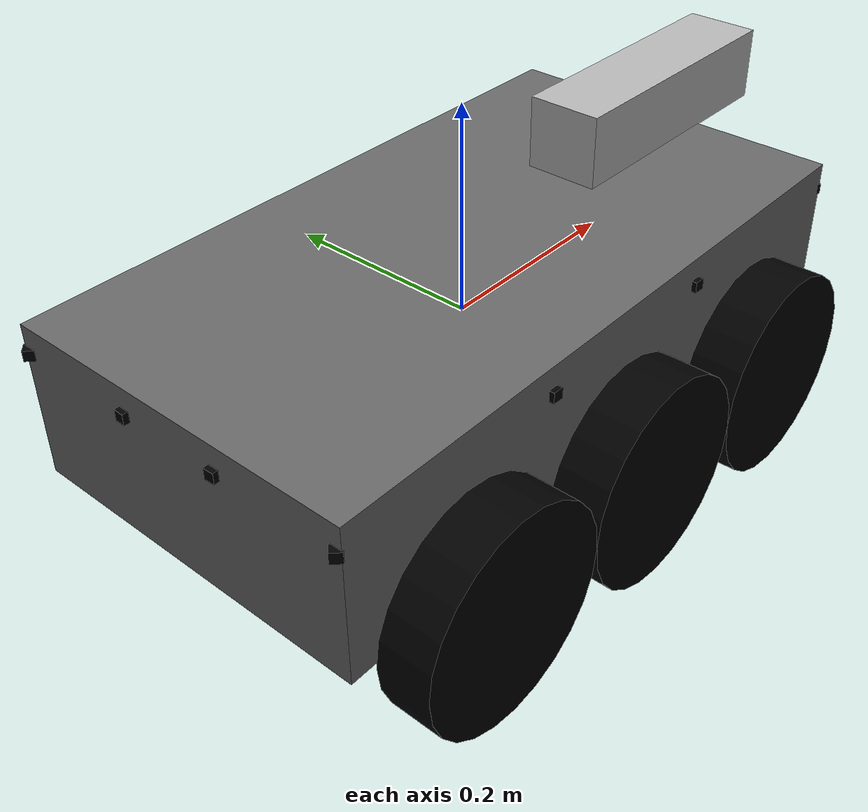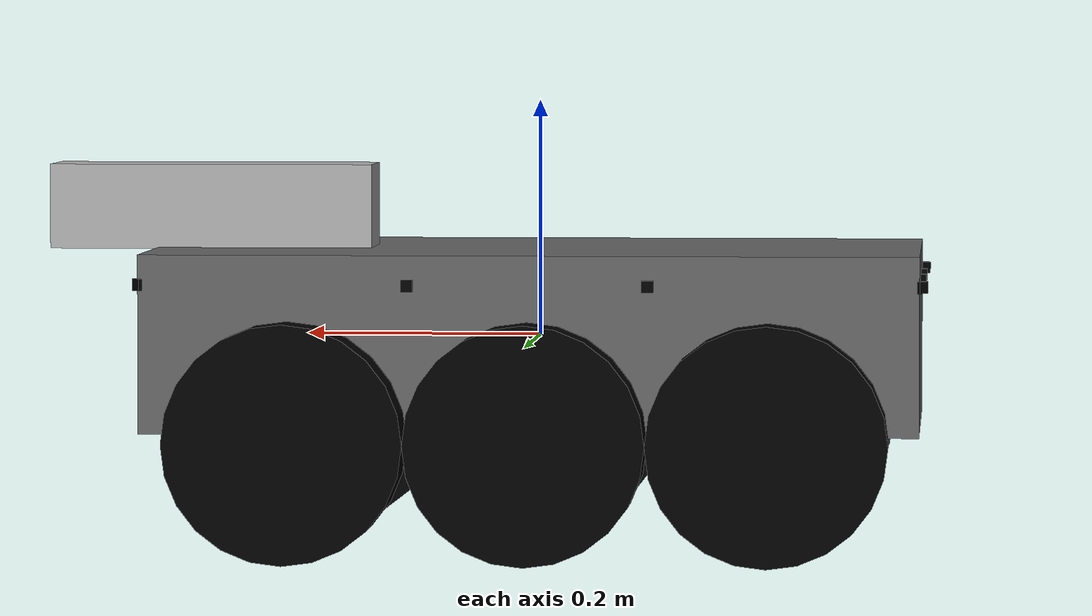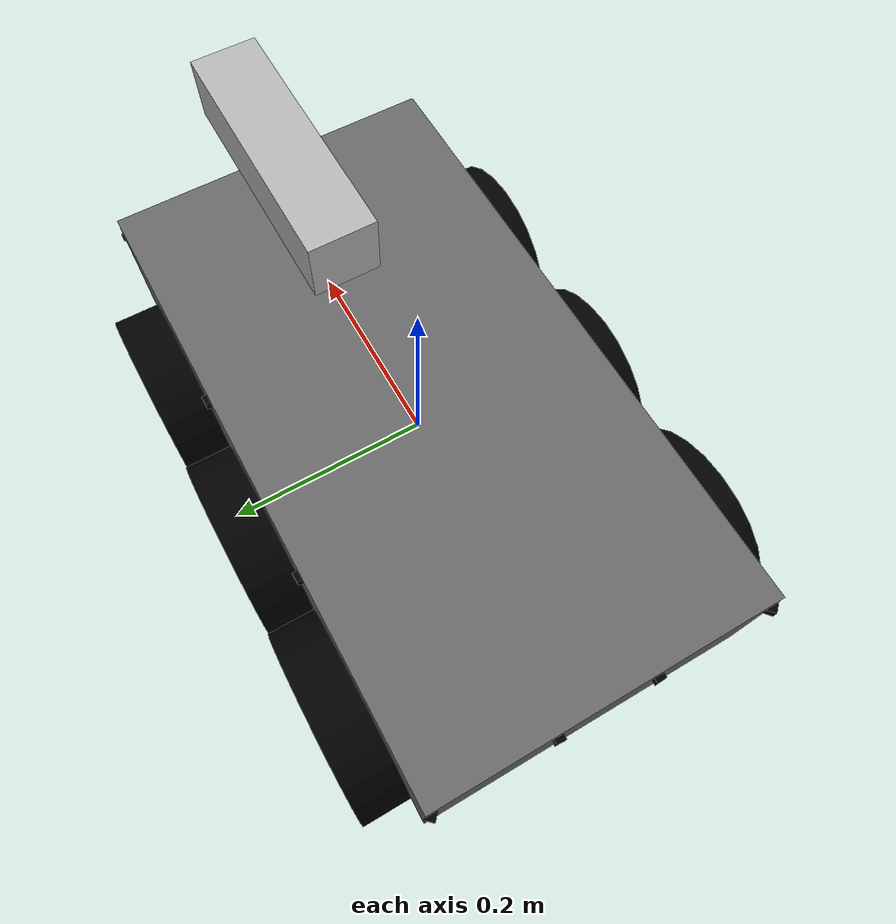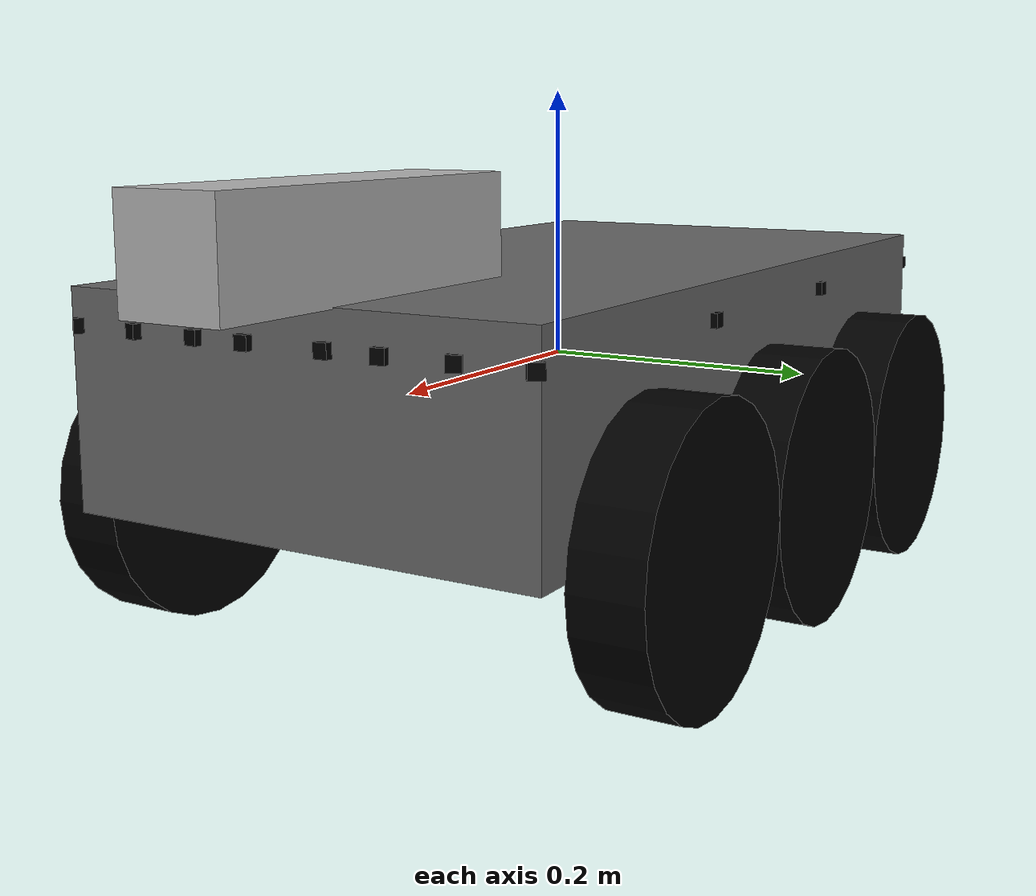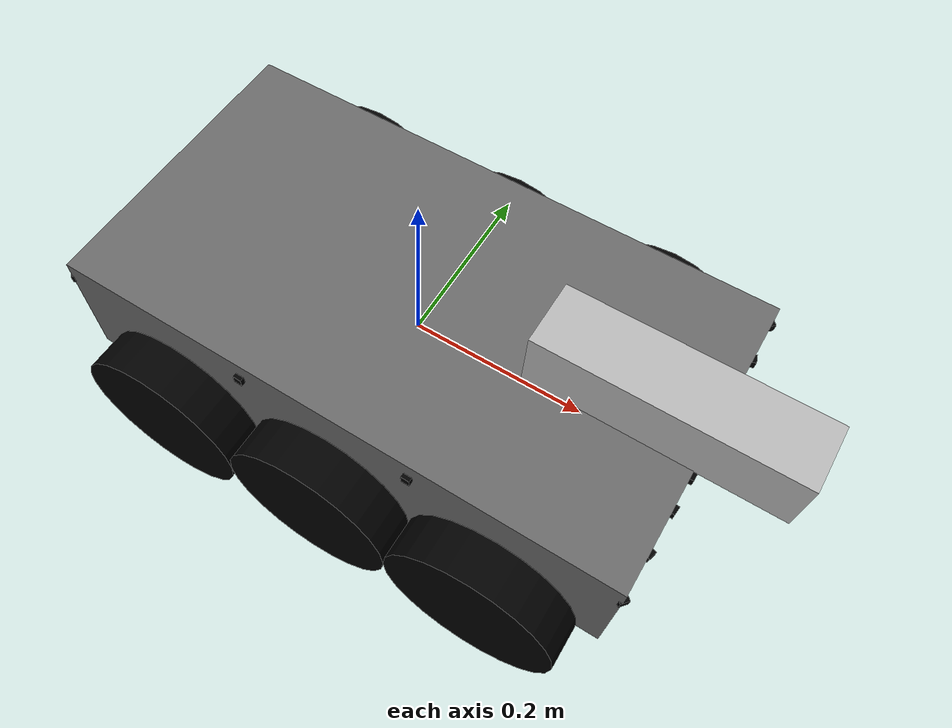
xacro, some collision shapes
<?xml version='1.0'?>

<robot name="koala" xmlns:xacro="http://www.ros.org/wiki/xacro">

  <!-- http://gazebosim.org/tutorials?tut=ros_gzplugins -->

  <xacro:property name="cameraSize" value="0.05"/>
  <xacro:property name="cameraMass" value="0.1"/>

  <xacro:include filename="$(find koala_description)/urdf/koala.gazebo" />
  <xacro:include filename="$(find koala_description)/urdf/materials.xacro" />
  <xacro:include filename="$(find koala_description)/urdf/macros.xacro" />

  <link name='body'>
    <pose>0 0 0.1 0 0 0</pose>

    <inertial>
      <mass value="10.0"/>
      <origin xyz="0.0 0 0.1" rpy=" 0 0 0"/>
      <inertia
          ixx="0.5" ixy="0" ixz="0"
          iyy="1.0" iyz="0"
          izz="0.1"
      />
    </inertial>

    <collision name='collision'>
      <geometry>
        <box size=".65 .35 .15"/>
      </geometry>
    </collision>

    <visual name='body_visual'>
      <origin xyz="0 0 0" rpy=" 0 0 0"/>
      <geometry>
        <box size=".65 .35 .15"/>
      </geometry>
      <material name="grey"/>
    </visual>

  </link>

<!--3x2 wheels skid steer robot-->>
  <link name="left_wheel_middle">
    <!--origin xyz="0.1 0.13 0.1" rpy="0 1.5707 1.5707"/-->
    <collision name="collision">
      <origin xyz="0 0 0" rpy="0 1.5707 1.5707"/>
      <geometry>
        <cylinder radius="0.1" length="0.05"/>
      </geometry>
    </collision>
    <visual name="left_wheel_middle_visual">
      <origin xyz="0 0 0" rpy="0 1.5707 1.5707"/>
      <geometry>
        <cylinder radius="0.1" length="0.05"/>
      </geometry>
      <material name="black"/>
    </visual>
    <inertial>
      <origin xyz="0 0 0" rpy="0 1.5707 1.5707"/>
      <mass value="5"/>
      <cylinder_inertia m="5" r="0.1" h="0.05"/>
      <inertia
        ixx="1.0" ixy="0.0" ixz="0.0"
        iyy="1.0" iyz="0.0"
        izz="1.0"/>
    </inertial>
  </link>

  <link name="right_wheel_middle">
    <!--origin xyz="0.1 -0.13 0.1" rpy="0 1.5707 1.5707"/-->
    <collision name="collision">
      <origin xyz="0 0 0" rpy="0 1.5707 1.5707"/>
      <geometry>
        <cylinder radius="0.1" length="0.05"/>
      </geometry>
    </collision>
    <visual name="right_wheel_middle_visual">
      <origin xyz="0 0 0" rpy="0 1.5707 1.5707"/>
      <geometry>
        <cylinder radius="0.1" length="0.05"/>
      </geometry>
      <material name="black"/>
    </visual>
    <inertial>
      <origin xyz="0 0 0" rpy="0 1.5707 1.5707"/>
      <mass value="5"/>
      <cylinder_inertia m="5" r="0.1" h="0.05"/>
      <inertia
        ixx="1.0" ixy="0.0" ixz="0.0"
        iyy="1.0" iyz="0.0"
        izz="1.0"/>
    </inertial>
  </link>

  <joint type="continuous" name="middle_left_wheel">
    <origin xyz="0 0.2 -0.08" rpy="0 0 0"/>
    <child link="left_wheel_middle"/>
    <parent link="body"/>
    <axis xyz="0 1 0" rpy="0 0 0"/>
    <limit effort="100" velocity="100"/>
    <joint_properties damping="0.0" friction="0.0"/>
  </joint>

  <joint type="continuous" name="middle_right_wheel">
    <origin xyz="0 -0.2 -0.08" rpy="0 0 0"/>
    <child link="right_wheel_middle"/>
    <parent link="body"/>
    <axis xyz="0 1 0" rpy="0 0 0"/>
    <limit effort="100" velocity="100"/>
    <joint_properties damping="0.0" friction="0.0"/>
  </joint>

 <link name="right_wheel_front">
    <!--origin xyz="0.1 -0.13 0.1" rpy="0 1.5707 1.5707"/-->
    <collision name="collision">
      <origin xyz="0 0 0" rpy="0 1.5707 1.5707"/>
      <geometry>
        <cylinder radius="0.1" length="0.05"/>
      </geometry>
    </collision>
    <visual name="right_wheel_front_visual">
      <origin xyz="0 0 0" rpy="0 1.5707 1.5707"/>
      <geometry>
        <cylinder radius="0.1" length="0.05"/>
      </geometry>
      <material name="black"/>
    </visual>
    <inertial>
      <origin xyz="0 0 0" rpy="0 1.5707 1.5707"/>
      <mass value="5"/>
      <cylinder_inertia m="5" r="0.1" h="0.05"/>
      <inertia
        ixx="1.0" ixy="0.0" ixz="0.0"
        iyy="1.0" iyz="0.0"
        izz="1.0"/>
    </inertial>
  </link>
   <link name="left_wheel_front">
    <!--origin xyz="0.1 -0.13 0.1" rpy="0 1.5707 1.5707"/-->
    <collision name="collision">
      <origin xyz="0 0 0" rpy="0 1.5707 1.5707"/>
      <geometry>
        <cylinder radius="0.1" length="0.05"/>
      </geometry>
    </collision>
    <visual name="left_wheel_front_visual">
      <origin xyz="0 0 0" rpy="0 1.5707 1.5707"/>
      <geometry>
        <cylinder radius="0.1" length="0.05"/>
      </geometry>
      <material name="black"/>
    </visual>
    <inertial>
      <origin xyz="0 0 0" rpy="0 1.5707 1.5707"/>
      <mass value="5"/>
      <cylinder_inertia m="5" r="0.1" h="0.05"/>
      <inertia
        ixx="1.0" ixy="0.0" ixz="0.0"
        iyy="1.0" iyz="0.0"
        izz="1.0"/>
    </inertial>
  </link>

  <joint type="continuous" name="front_left_wheel">
    <origin xyz="0.2 0.2 -0.08" rpy="0 0 0"/>
    <child link="left_wheel_front"/>
    <parent link="body"/>
    <axis xyz="0 1 0" rpy="0 0 0"/>
    <limit effort="100" velocity="100"/>
    <joint_properties damping="0.0" friction="0.0"/>
  </joint>

  <joint type="continuous" name="front_right_wheel">
    <origin xyz="0.2 -0.2 -0.08" rpy="0 0 0"/>
    <child link="right_wheel_front"/>
    <parent link="body"/>
    <axis xyz="0 1 0" rpy="0 0 0"/>
    <limit effort="100" velocity="100"/>
    <joint_properties damping="0.0" friction="0.0"/>
  </joint>

 <link name="left_wheel_rear">
    <!--origin xyz="0.1 -0.13 0.1" rpy="0 1.5707 1.5707"/-->
    <collision name="collision">
      <origin xyz="0 0 0" rpy="0 1.5707 1.5707"/>
      <geometry>
        <cylinder radius="0.1" length="0.05"/>
      </geometry>
    </collision>
    <visual name="left_wheel_rear_visual">
      <origin xyz="0 0 0" rpy="0 1.5707 1.5707"/>
      <geometry>
        <cylinder radius="0.1" length="0.05"/>
      </geometry>
      <material name="black"/>
    </visual>
    <inertial>
      <origin xyz="0 0 0" rpy="0 1.5707 1.5707"/>
      <mass value="5"/>
      <cylinder_inertia m="5" r="0.1" h="0.05"/>
      <inertia
        ixx="1.0" ixy="0.0" ixz="0.0"
        iyy="1.0" iyz="0.0"
        izz="1.0"/>
    </inertial>
  </link>
   <link name="right_wheel_rear">
    <!--origin xyz="0.1 -0.13 0.1" rpy="0 1.5707 1.5707"/-->
    <collision name="collision">
      <origin xyz="0 0 0" rpy="0 1.5707 1.5707"/>
      <geometry>
        <cylinder radius="0.1" length="0.05"/>
      </geometry>
    </collision>
    <visual name="right_wheel_rear_visual">
      <origin xyz="0 0 0" rpy="0 1.5707 1.5707"/>
      <geometry>
        <cylinder radius="0.1" length="0.05"/>
      </geometry>
      <material name="black"/>
    </visual>
    <inertial>
      <origin xyz="0 0 0" rpy="0 1.5707 1.5707"/>
      <mass value="5"/>
      <cylinder_inertia m="5" r="0.1" h="0.05"/>
      <inertia
        ixx="1.0" ixy="0.0" ixz="0.0"
        iyy="1.0" iyz="0.0"
        izz="1.0"/>
    </inertial>
  </link>

  <joint type="continuous" name="rear_left_wheel">
    <origin xyz="-0.2 0.2 -0.08" rpy="0 0 0"/>
    <child link="left_wheel_rear"/>
    <parent link="body"/>
    <axis xyz="0 1 0" rpy="0 0 0"/>
    <limit effort="100" velocity="100"/>
    <joint_properties damping="0.0" friction="0.0"/>
  </joint>

  <joint type="continuous" name="rear_right_wheel">
    <origin xyz="-0.2 -0.2 -0.08" rpy="0 0 0"/>
    <child link="right_wheel_rear"/>
    <parent link="body"/>
    <axis xyz="0 1 0" rpy="0 0 0"/>
    <limit effort="100" velocity="100"/>
    <joint_properties damping="0.0" friction="0.0"/>
  </joint>

<!-- Camera -->
  <link name="kinect">
    <collision name="collision">
      <origin xyz="0 0 0" rpy="0 0 1.57"/>
      <geometry>
        <box size="0.073000 0.276000 0.072000"/>
      </geometry>
    </collision>
    <visual name="visual">
      <origin xyz="0 0 0" rpy="0 0 1.57"/>
      <geometry>
        <mesh filename="package://koala_description/meshes/kinect.dae"/>
      </geometry>
    </visual>
    <inertial>
      <mass value="1e-5" />
      <origin xyz="0 0 0" rpy="0 0 0"/>
      <inertia ixx="1e-6" ixy="0" ixz="0" iyy="1e-6" iyz="0" izz="1e-6" />
    </inertial>
  </link>

  <joint name="kinect_joint" type="fixed">
    <axis xyz="0 1 0" />
    <origin xyz="0.28 0.0 0.11" rpy="0 0 0"/>
    <parent link="body"/>
    <child link="kinect"/>
  </joint>

<!-- generate an optical frame
      http://www.ros.org/reps/rep-0103.html#suffix-frames
      so that ros and opencv can operate on the camera frame correctly
      -->
  <joint name="kinect_optical_joint" type="fixed">
    <!-- these values have to be these values otherwise the gazebo camera
        image won't be aligned properly with the frame it is supposedly
        originating from -->
    <origin xyz="0 0 0" rpy="-1.57 0 -1.57"/>
    <parent link="kinect"/>
    <child link="kinect_link_optical"/>
  </joint>

  <link name="kinect_link_optical">
  </link>

<!--IR sensors right front-->
  <joint name="ir_r0_joint" type="fixed">
    <axis xyz="0 1 0" />
    <origin rpy="0 0 0" xyz="0.325 -0.03 0.05" />
    <parent link="body"/>
    <child link="ir_r0"/>
  </joint>

  <link name="ir_r0">
    <collision>
      <origin xyz="0 0 0" rpy="0 0 0"/>
      <geometry>
        <box size="0.01 0.01 0.01"/>
      </geometry>
    </collision>

    <visual>
      <origin xyz="0 0 0" rpy="0 0 0"/>
      <geometry>
        <box size="0.01 0.01 0.01"/>
      </geometry>
      <material name="black"/>
    </visual>

    <inertial>
      <mass value="1e-5" />
      <origin xyz="0 0 0" rpy="0 0 0"/>
      <inertia ixx="1e-6" ixy="0" ixz="0" iyy="1e-6" iyz="0" izz="1e-6" />
    </inertial>
  </link>

  <joint name="ir_r1_joint" type="fixed">
    <axis xyz="0 1 0" />
    <origin rpy="0 0 -0.1" xyz="0.3245 -0.07 0.05" />
    <parent link="body"/>
    <child link="ir_r1"/>
  </joint>

  <link name="ir_r1">
    <collision>
      <origin xyz="0 0 0" rpy="0 0 0"/>
      <geometry>
        <box size="0.01 0.01 0.01"/>
      </geometry>
    </collision>

    <visual>
      <origin xyz="0 0 0" rpy="0 0 0"/>
      <geometry>
        <box size="0.01 0.01 0.01"/>
      </geometry>
      <material name="black"/>
    </visual>

    <inertial>
      <mass value="1e-5" />
      <origin xyz="0 0 0" rpy="0 0 0"/>
      <inertia ixx="1e-6" ixy="0" ixz="0" iyy="1e-6" iyz="0" izz="1e-6" />
    </inertial>
  </link>

  <joint name="ir_r2_joint" type="fixed">
    <axis xyz="0 1 0" />
    <origin rpy="0 0 -0.3" xyz="0.324 -0.12 0.05" />
    <parent link="body"/>
    <child link="ir_r2"/>
  </joint>

  <link name="ir_r2">
    <collision>
      <origin xyz="0 0 0" rpy="0 0 0"/>
      <geometry>
        <box size="0.01 0.01 0.01"/>
      </geometry>
    </collision>

    <visual>
      <origin xyz="0 0 0" rpy="0 0 0"/>
      <geometry>
        <box size="0.01 0.01 0.01"/>
      </geometry>
      <material name="black"/>
    </visual>

    <inertial>
      <mass value="1e-5" />
      <origin xyz="0 0 0" rpy="0 0 0"/>
      <inertia ixx="1e-6" ixy="0" ixz="0" iyy="1e-6" iyz="0" izz="1e-6" />
    </inertial>
  </link>

  <joint name="ir_r3_joint" type="fixed">
    <axis xyz="0 1 0" />
    <origin rpy="0 0 -0.7" xyz="0.323 -0.17 0.05" />
    <parent link="body"/>
    <child link="ir_r3"/>
  </joint>

  <link name="ir_r3">
    <collision>
      <origin xyz="0 0 0" rpy="0 0 0"/>
      <geometry>
        <box size="0.01 0.01 0.01"/>
      </geometry>
    </collision>

    <visual>
      <origin xyz="0 0 0" rpy="0 0 0"/>
      <geometry>
        <box size="0.01 0.01 0.01"/>
      </geometry>
      <material name="black"/>
    </visual>

    <inertial>
      <mass value="1e-5" />
      <origin xyz="0 0 0" rpy="0 0 0"/>
      <inertia ixx="1e-6" ixy="0" ixz="0" iyy="1e-6" iyz="0" izz="1e-6" />
    </inertial>
  </link>

<!--IR sensors right-->
  <joint name="ir_r4_joint" type="fixed">
    <axis xyz="0 1 0" />
    <origin rpy="0 0 -1.6" xyz="0.1 -0.175 0.05" />
    <parent link="body"/>
    <child link="ir_r4"/>
  </joint>

  <link name="ir_r4">
    <collision>
      <origin xyz="0 0 0" rpy="0 0 0"/>
      <geometry>
        <box size="0.01 0.01 0.01"/>
      </geometry>
    </collision>

    <visual>
      <origin xyz="0 0 0" rpy="0 0 0"/>
      <geometry>
        <box size="0.01 0.01 0.01"/>
      </geometry>
      <material name="black"/>
    </visual>

    <inertial>
      <mass value="1e-5" />
      <origin xyz="0 0 0" rpy="0 0 0"/>
      <inertia ixx="1e-6" ixy="0" ixz="0" iyy="1e-6" iyz="0" izz="1e-6" />
    </inertial>
  </link>

  <joint name="ir_r5_joint" type="fixed">
    <axis xyz="0 1 0" />
    <origin rpy="0 0 -1.6" xyz="-0.1 -0.175 0.05" />
    <parent link="body"/>
    <child link="ir_r5"/>
  </joint>

  <link name="ir_r5">
    <collision>
      <origin xyz="0 0 0" rpy="0 0 0"/>
      <geometry>
        <box size="0.01 0.01 0.01"/>
      </geometry>
    </collision>

    <visual>
      <origin xyz="0 0 0" rpy="0 0 0"/>
      <geometry>
        <box size="0.01 0.01 0.01"/>
      </geometry>
      <material name="black"/>
    </visual>

    <inertial>
      <mass value="1e-5" />
      <origin xyz="0 0 0" rpy="0 0 0"/>
      <inertia ixx="1e-6" ixy="0" ixz="0" iyy="1e-6" iyz="0" izz="1e-6" />
    </inertial>
  </link>

<!--IR sensors right rear-->
  <joint name="ir_r6_joint" type="fixed">
    <axis xyz="0 1 0" />
    <origin rpy="0 0 -2.4" xyz="-0.325 -0.17 0.05" />
    <parent link="body"/>
    <child link="ir_r6"/>
  </joint>

  <link name="ir_r6">
    <collision>
      <origin xyz="0 0 0" rpy="0 0 0"/>
      <geometry>
        <box size="0.01 0.01 0.01"/>
      </geometry>
    </collision>

    <visual>
      <origin xyz="0 0 0" rpy="0 0 0"/>
      <geometry>
        <box size="0.01 0.01 0.01"/>
      </geometry>
      <material name="black"/>
    </visual>

    <inertial>
      <mass value="1e-5" />
      <origin xyz="0 0 0" rpy="0 0 0"/>
      <inertia ixx="1e-6" ixy="0" ixz="0" iyy="1e-6" iyz="0" izz="1e-6" />
    </inertial>
  </link>

  <joint name="ir_r7_joint" type="fixed">
    <axis xyz="0 1 0" />
    <origin rpy="0 0 -3.1" xyz="-0.325 -0.05 0.05" />
    <parent link="body"/>
    <child link="ir_r7"/>
  </joint>

  <link name="ir_r7">
    <collision>
      <origin xyz="0 0 0" rpy="0 0 0"/>
      <geometry>
        <box size="0.01 0.01 0.01"/>
      </geometry>
    </collision>

    <visual>
      <origin xyz="0 0 0" rpy="0 0 0"/>
      <geometry>
        <box size="0.01 0.01 0.01"/>
      </geometry>
      <material name="black"/>
    </visual>

    <inertial>
      <mass value="1e-5" />
      <origin xyz="0 0 0" rpy="0 0 0"/>
      <inertia ixx="1e-6" ixy="0" ixz="0" iyy="1e-6" iyz="0" izz="1e-6" />
    </inertial>
  </link>

<!--IR sensors left front-->
  <joint name="ir_l0_joint" type="fixed">
    <axis xyz="0 1 0" />
    <origin rpy="0 0 0" xyz="0.325 0.03 0.05" />
    <parent link="body"/>
    <child link="ir_l0"/>
  </joint>

  <link name="ir_l0">
    <collision>
      <origin xyz="0 0 0" rpy="0 0 0"/>
      <geometry>
        <box size="0.01 0.01 0.01"/>
      </geometry>
    </collision>

    <visual>
      <origin xyz="0 0 0" rpy="0 0 0"/>
      <geometry>
        <box size="0.01 0.01 0.01"/>
      </geometry>
      <material name="black"/>
    </visual>

    <inertial>
      <mass value="1e-5" />
      <origin xyz="0 0 0" rpy="0 0 0"/>
      <inertia ixx="1e-6" ixy="0" ixz="0" iyy="1e-6" iyz="0" izz="1e-6" />
    </inertial>
  </link>

  <joint name="ir_l1_joint" type="fixed">
    <axis xyz="0 1 0" />
    <origin rpy="0 0 0.1" xyz="0.3245 0.07 0.05" />
    <parent link="body"/>
    <child link="ir_l1"/>
  </joint>

  <link name="ir_l1">
    <collision>
      <origin xyz="0 0 0" rpy="0 0 0"/>
      <geometry>
        <box size="0.01 0.01 0.01"/>
      </geometry>
    </collision>

    <visual>
      <origin xyz="0 0 0" rpy="0 0 0"/>
      <geometry>
        <box size="0.01 0.01 0.01"/>
      </geometry>
      <material name="black"/>
    </visual>

    <inertial>
      <mass value="1e-5" />
      <origin xyz="0 0 0" rpy="0 0 0"/>
      <inertia ixx="1e-6" ixy="0" ixz="0" iyy="1e-6" iyz="0" izz="1e-6" />
    </inertial>
  </link>

  <joint name="ir_l2joint" type="fixed">
    <axis xyz="0 1 0" />
    <origin rpy="0 0 0.3" xyz="0.324 0.12 0.05" />
    <parent link="body"/>
    <child link="ir_l2"/>
  </joint>

  <link name="ir_l2">
    <collision>
      <origin xyz="0 0 0" rpy="0 0 0"/>
      <geometry>
        <box size="0.01 0.01 0.01"/>
      </geometry>
    </collision>

    <visual>
      <origin xyz="0 0 0" rpy="0 0 0"/>
      <geometry>
        <box size="0.01 0.01 0.01"/>
      </geometry>
      <material name="black"/>
    </visual>

    <inertial>
      <mass value="1e-5" />
      <origin xyz="0 0 0" rpy="0 0 0"/>
      <inertia ixx="1e-6" ixy="0" ixz="0" iyy="1e-6" iyz="0" izz="1e-6" />
    </inertial>
  </link>

  <joint name="ir_l3_joint" type="fixed">
    <axis xyz="0 1 0" />
    <origin rpy="0 0 0.7" xyz="0.323 0.17 0.05" />
    <parent link="body"/>
    <child link="ir_l3"/>
  </joint>

  <link name="ir_l3">
    <collision>
      <origin xyz="0 0 0" rpy="0 0 0"/>
      <geometry>
        <box size="0.01 0.01 0.01"/>
      </geometry>
    </collision>

    <visual>
      <origin xyz="0 0 0" rpy="0 0 0"/>
      <geometry>
        <box size="0.01 0.01 0.01"/>
      </geometry>
      <material name="black"/>
    </visual>

    <inertial>
      <mass value="1e-5" />
      <origin xyz="0 0 0" rpy="0 0 0"/>
      <inertia ixx="1e-6" ixy="0" ixz="0" iyy="1e-6" iyz="0" izz="1e-6" />
    </inertial>
  </link>

<!--IR sensors left-->
  <joint name="ir_l4_joint" type="fixed">
    <axis xyz="0 1 0" />
    <origin rpy="0 0 1.6" xyz="0.1 0.175 0.05" />
    <parent link="body"/>
    <child link="ir_l4"/>
  </joint>

  <link name="ir_l4">
    <collision>
      <origin xyz="0 0 0" rpy="0 0 0"/>
      <geometry>
        <box size="0.01 0.01 0.01"/>
      </geometry>
    </collision>

    <visual>
      <origin xyz="0 0 0" rpy="0 0 0"/>
      <geometry>
        <box size="0.01 0.01 0.01"/>
      </geometry>
      <material name="black"/>
    </visual>

    <inertial>
      <mass value="1e-5" />
      <origin xyz="0 0 0" rpy="0 0 0"/>
      <inertia ixx="1e-6" ixy="0" ixz="0" iyy="1e-6" iyz="0" izz="1e-6" />
    </inertial>
  </link>

  <joint name="ir_l5_joint" type="fixed">
    <axis xyz="0 1 0" />
    <origin rpy="0 0 1.6" xyz="-0.1 0.175 0.05" />
    <parent link="body"/>
    <child link="ir_l5"/>
  </joint>

  <link name="ir_l5">
    <collision>
      <origin xyz="0 0 0" rpy="0 0 0"/>
      <geometry>
        <box size="0.01 0.01 0.01"/>
      </geometry>
    </collision>

    <visual>
      <origin xyz="0 0 0" rpy="0 0 0"/>
      <geometry>
        <box size="0.01 0.01 0.01"/>
      </geometry>
      <material name="black"/>
    </visual>

    <inertial>
      <mass value="1e-5" />
      <origin xyz="0 0 0" rpy="0 0 0"/>
      <inertia ixx="1e-6" ixy="0" ixz="0" iyy="1e-6" iyz="0" izz="1e-6" />
    </inertial>
  </link>

<!--IR sensors left rear-->
  <joint name="ir_l6_joint" type="fixed">
    <axis xyz="0 1 0" />
    <origin rpy="0 0 2.4" xyz="-0.325 0.17 0.05" />
    <parent link="body"/>
    <child link="ir_l6"/>
  </joint>

  <link name="ir_l6">
    <collision>
      <origin xyz="0 0 0" rpy="0 0 0"/>
      <geometry>
        <box size="0.01 0.01 0.01"/>
      </geometry>
    </collision>

    <visual>
      <origin xyz="0 0 0" rpy="0 0 0"/>
      <geometry>
        <box size="0.01 0.01 0.01"/>
      </geometry>
      <material name="black"/>
    </visual>

    <inertial>
      <mass value="1e-5" />
      <origin xyz="0 0 0" rpy="0 0 0"/>
      <inertia ixx="1e-6" ixy="0" ixz="0" iyy="1e-6" iyz="0" izz="1e-6" />
    </inertial>
  </link>

  <joint name="ir_l7_joint" type="fixed">
    <axis xyz="0 1 0" />
    <origin rpy="0 0 3.1" xyz="-0.325 0.05 0.05" />
    <parent link="body"/>
    <child link="ir_l7"/>
  </joint>

  <link name="ir_l7">
    <collision>
      <origin xyz="0 0 0" rpy="0 0 0"/>
      <geometry>
        <box size="0.01 0.01 0.01"/>
      </geometry>
    </collision>

    <visual>
      <origin xyz="0 0 0" rpy="0 0 0"/>
      <geometry>
        <box size="0.01 0.01 0.01"/>
      </geometry>
      <material name="black"/>
    </visual>

    <inertial>
      <mass value="1e-5" />
      <origin xyz="0 0 0" rpy="0 0 0"/>
      <inertia ixx="1e-6" ixy="0" ixz="0" iyy="1e-6" iyz="0" izz="1e-6" />
    </inertial>
  </link>

</robot>

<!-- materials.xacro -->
<robot>

  <material name="black">
    <color rgba="0.0 0.0 0.0 1.0"/>
  </material>

  <material name="blue">
    <color rgba="0.0 0.0 0.8 1.0"/>
  </material>

  <material name="green">
    <color rgba="0.0 0.8 0.0 1.0"/>
  </material>

  <material name="grey">
    <color rgba="0.4 0.4 0.4 1.0"/>
  </material>

  <material name="orange">
    <color rgba="${255/255} ${108/255} ${10/255} 1.0"/>
  </material>

  <material name="brown">
    <color rgba="${222/255} ${207/255} ${195/255} 1.0"/>
  </material>

  <material name="red">
    <color rgba="0.8 0.0 0.0 1.0"/>
  </material>

  <material name="white">
    <color rgba="1.0 1.0 1.0 1.0"/>
  </material>

</robot>
